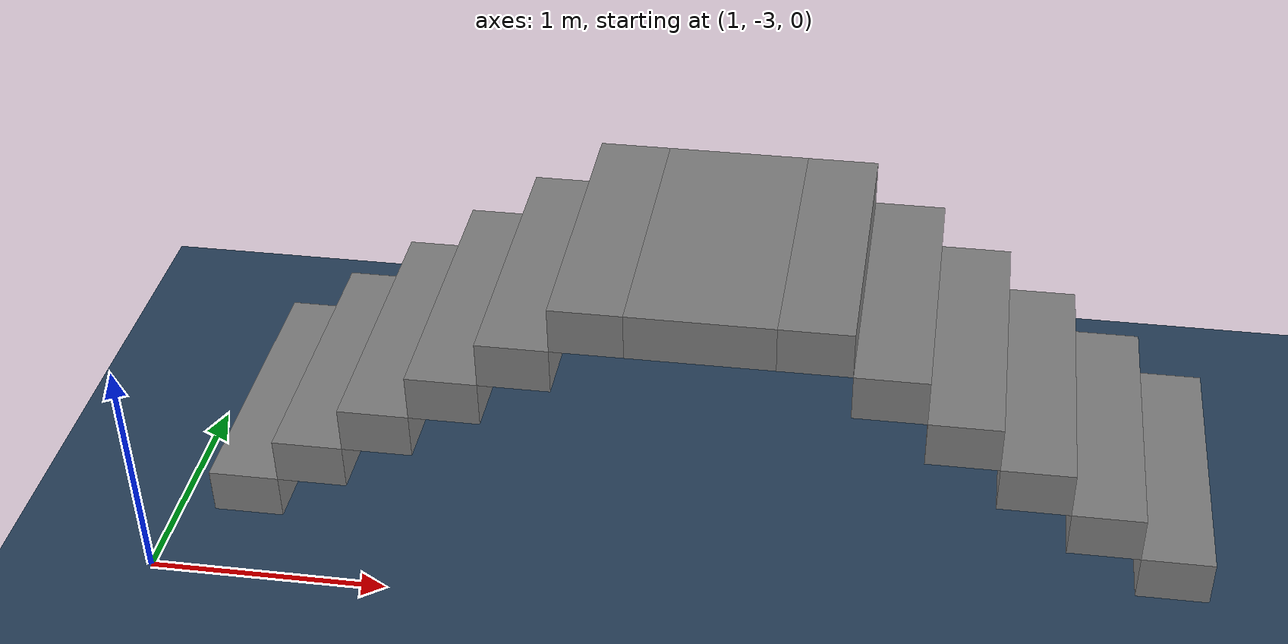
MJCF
<mujoco model="go2 scene">

  <statistic center="0 0 0.1" extent="0.8" />

  <visual>
    <headlight diffuse="0.6 0.6 0.6" ambient="0.3 0.3 0.3" specular="0 0 0" />
    <rgba haze="0.15 0.25 0.35 1" />
    <global azimuth="-130" elevation="-20" />
  </visual>

  <asset>
    <texture type="skybox" builtin="gradient" rgb1="0.3 0.5 0.7" rgb2="0 0 0" width="512"
      height="3072" />
    <texture type="2d" name="groundplane" builtin="checker" mark="edge" rgb1="0.2 0.3 0.4"
      rgb2="0.1 0.2 0.3" markrgb="0.8 0.8 0.8" width="300" height="300" />
    <material name="groundplane" texture="groundplane" texuniform="true" texrepeat="5 5"
      reflectance="0.2" />
  </asset>

  <worldbody>
    <light pos="0 0 1.5" dir="0 0 -1" directional="true" />
    <geom name="floor" size="0 0 0.05" type="plane" material="groundplane" />
    <geom pos="1.3 -2.0 0.1" type="box" size="0.15 0.625 0.1" quat="1.0 0.0 0.0 0.0" />
    <geom pos="1.6 -2.0 0.30000000000000004" type="box" size="0.15 0.625 0.1" quat="1.0 0.0 0.0 0.0" />
    <geom pos="1.9 -2.0 0.5" type="box" size="0.15 0.625 0.1" quat="1.0 0.0 0.0 0.0" />
    <geom pos="2.2 -2.0 0.7" type="box" size="0.15 0.625 0.1" quat="1.0 0.0 0.0 0.0" />
    <geom pos="2.5 -2.0 0.8999999999999999" type="box" size="0.15 0.625 0.1" quat="1.0 0.0 0.0 0.0" />
    <geom pos="2.8 -2.0 1.0999999999999999" type="box" size="0.15 0.625 0.1" quat="1.0 0.0 0.0 0.0" />
    <geom pos="5.2 -2.0 0.1" type="box" size="0.15 0.625 0.1"
      quat="6.123233995736766e-17 0.0 0.0 1.0" />
    <geom pos="4.9 -2.0 0.30000000000000004" type="box" size="0.15 0.625 0.1"
      quat="6.123233995736766e-17 0.0 0.0 1.0" />
    <geom pos="4.6 -2.0 0.5" type="box" size="0.15 0.625 0.1"
      quat="6.123233995736766e-17 0.0 0.0 1.0" />
    <geom pos="4.3 -1.9999999999999998 0.7" type="box" size="0.15 0.625 0.1"
      quat="6.123233995736766e-17 0.0 0.0 1.0" />
    <geom pos="4.0 -1.9999999999999998 0.8999999999999999" type="box" size="0.15 0.625 0.1"
      quat="6.123233995736766e-17 0.0 0.0 1.0" />
    <geom pos="3.7 -1.9999999999999998 1.0999999999999999" type="box" size="0.15 0.625 0.1"
      quat="6.123233995736766e-17 0.0 0.0 1.0" />
    <geom pos="3.25 -2.0 1.1" type="box" size="0.3 0.625 0.1" quat="1.0 0.0 0.0 0.0" />
  </worldbody>
</mujoco>
